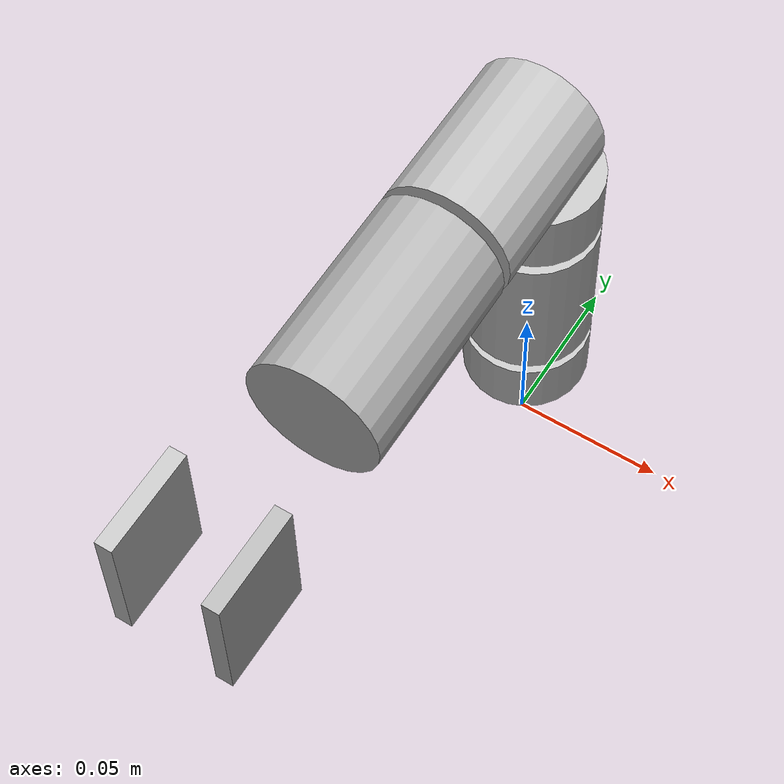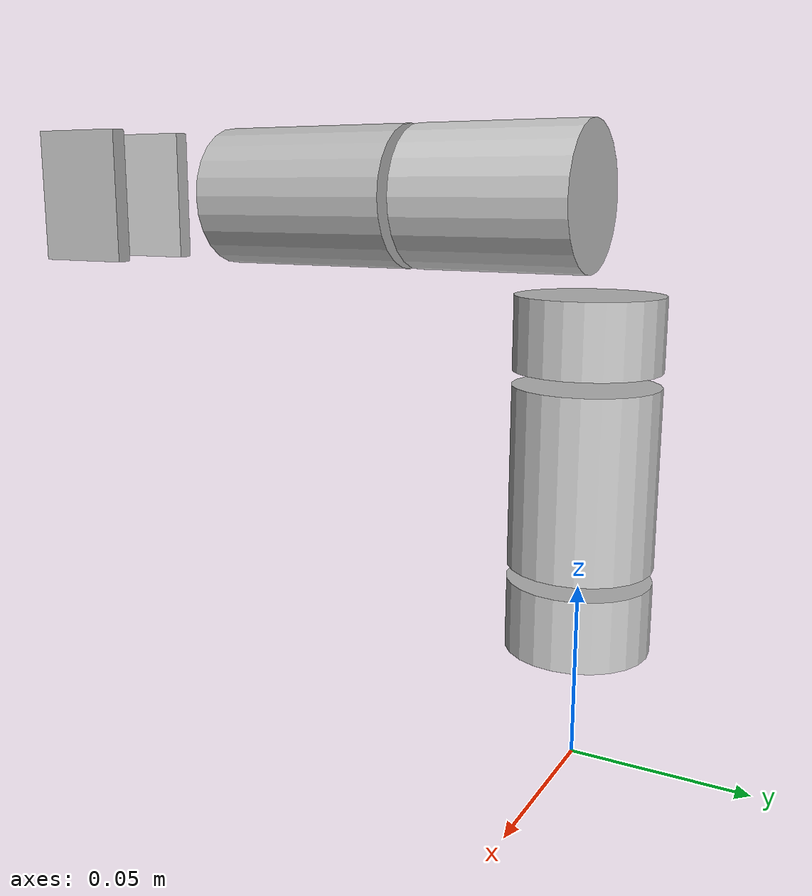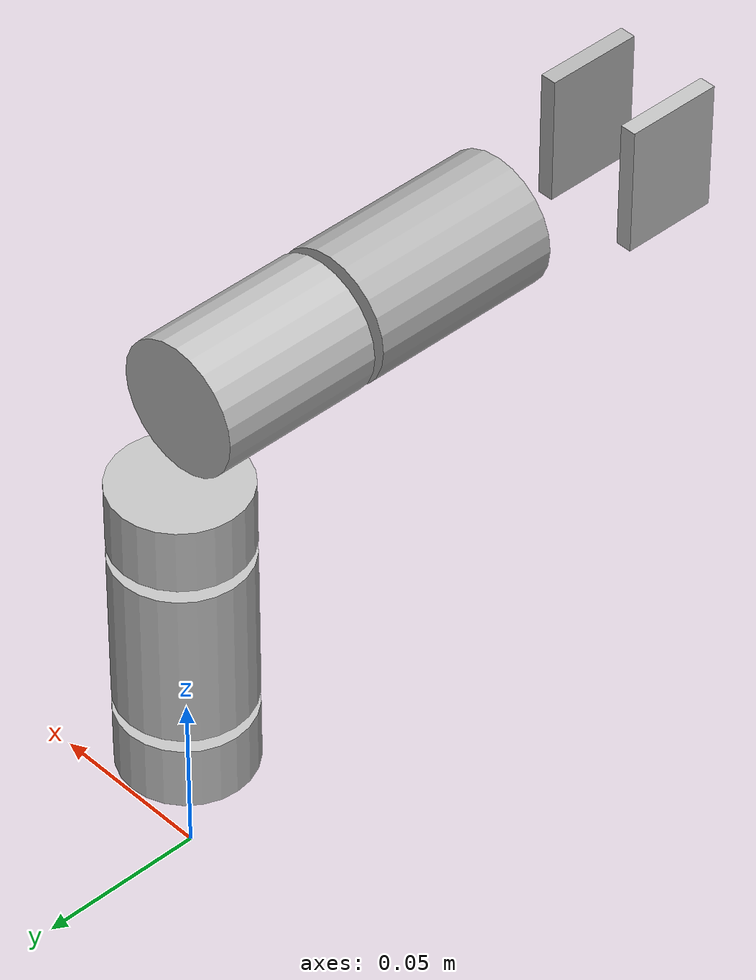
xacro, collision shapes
<?xml version="1.0" encoding="UTF-8"?>
<robot xmlns:xacro="http://www.ros.org/wiki/xacro" name="poppy_ergo_jr">
  <!-- Properties -->
  <xacro:property name="namespace" value="ergo_jr" />

  <xacro:arg name="lamp" default="false"/>
  <xacro:arg name="gripper" default="true"/>

  <xacro:arg name="fixed" default="true"/>
  <xacro:property name="is_fixed" value="true"/>

  <!-- Macro to add a camera. -->
  <xacro:macro name="camera_macro"
    params="namespace parent_link camera_suffix frame_rate
      horizontal_fov image_width image_height image_format min_distance
      max_distance noise_mean noise_stddev enable_visual *cylinder *origin">
    <link name="${namespace}/camera_${camera_suffix}_link">

      <xacro:if value="${enable_visual}">

        <visual>
          <origin xyz="0 0 0" rpy="0 1.57079632679 0" />
          <geometry>
            <xacro:insert_block name="cylinder" />
          </geometry>
          <material name="red">
		     <color rgba="1 0 0 1"/>
	  </material>
        </visual>
      </xacro:if>

      <inertial>
        <mass value="1e-5" />
        <origin xyz="0 0 0" rpy="0 0 0" />
        <inertia ixx="1e-6" ixy="0" ixz="0" iyy="1e-6" iyz="0" izz="1e-6" />
      </inertial>
    </link>

    <joint name="${namespace}/camera_${camera_suffix}_joint" type="fixed">
      <xacro:insert_block name="origin" />
      <parent link="${parent_link}" />
      <child link="${namespace}/camera_${camera_suffix}_link" />
    </joint>

    <gazebo reference="${namespace}/camera_${camera_suffix}_link">
      <sensor type="camera" name="${namespace}_camera_${camera_suffix}">
        <update_rate>${frame_rate}</update_rate>
        <camera name="head">
          <horizontal_fov>${horizontal_fov}</horizontal_fov>
          <image>
            <width>${image_width}</width>
            <height>${image_height}</height>
            <format>${image_format}</format>
          </image>
          <clip>
            <near>${min_distance}</near>
            <far>${max_distance}</far>
          </clip>
          <noise>
            <type>gaussian</type>
            <!-- Noise is sampled independently per pixel on each frame.
                 That pixel's noise value is added to each of its color
                 channels, which at that point lie in the range [0,1]. -->
            <mean>${noise_mean}</mean>
            <stddev>${noise_stddev}</stddev>
          </noise>
        </camera>
        <plugin name="${namespace}_camera_${camera_suffix}_controller" filename="libgazebo_ros_camera.so">
          <robotNamespace>${namespace}</robotNamespace>
          <alwaysOn>true</alwaysOn>
          <updateRate>${frame_rate}</updateRate>
          <cameraName>camera_${camera_suffix}</cameraName>
          <imageTopicName>image_raw</imageTopicName>
          <cameraInfoTopicName>camera_info</cameraInfoTopicName>
          <frameName>camera_${camera_suffix}_link</frameName>
          <hackBaseline>0.0</hackBaseline>
	  <Cx>2.0500638605704751e+02</Cx>
	  <Cy>1.5106876398089261e+02</Cy>
	  <focalLength>632.193308</focalLength>
          <distortionK1>1.4043219721770492e-01</distortionK1>
          <distortionK2>-1.3210129724889583e-01</distortionK2>
          <distortionK3>-3.6452869939025279e-01</distortionK3>
          <distortionT1>-5.1782301614838704e-04</distortionT1>
          <distortionT2>-5.2090817919999092e-03</distortionT2>
        </plugin>
      </sensor>
    </gazebo>
  </xacro:macro>

<xacro:camera_macro
    namespace="${namespace}"
    parent_link="base_link"
    camera_suffix="ergo"
    frame_rate="30.0"
    horizontal_fov="1.12825740656329"
    image_width="800"
    image_height="600"
    image_format="R8G8B8"
    min_distance="0.02"
    max_distance="400"
    noise_mean="0.0"
    noise_stddev="0.001"
    enable_visual="False"
    >
    <cylinder length="0.01" radius="0.007" />
    <origin xyz="0.0 -0.025 0.02" rpy="0 -0.39269908169872414 -1.57079632679"/>

</xacro:camera_macro>

<xacro:if value="$(arg fixed)">
<link name="world"/>
  <joint name="fixed" type="fixed">
    <parent link="world"/>
    <child link="base_link"/>
  </joint>
</xacro:if>
 <link name="base_link">
    <visual>
      <origin xyz="0 0 0" rpy="0 0 0" />
      <geometry>
        <mesh filename="package://poppy_ergo_jr_description/meshes/base.dae" />
      </geometry>
    </visual>

    <xacro:if value="${is_fixed == 'false'}">
    <inertial>
      <mass value="0.5" />
      <inertia ixx="0.1" iyy="0.1" izz="0.1" ixy="0.0" ixz="0.0" iyz="0.0" />
    </inertial>
    </xacro:if>
  </link>

  <link name="long_U">
    <visual>
      <origin xyz="0 0 0" rpy="0 0 0" />
      <geometry>
        <mesh filename="package://poppy_ergo_jr_description/meshes/long_U.dae" />
      </geometry>
      <material name="">
        <color rgba="0.752941176470588 0.752941176470588 0.752941176470588 1" />
      </material>
    </visual>
    <collision>
      <origin xyz="0 0 0.01" rpy="0 0 0" />
      <geometry>
        <cylinder length="0.02" radius="0.02" />
      </geometry>

    </collision>
    <inertial>
      <mass value="0.01" />
      <inertia ixx="0.03" iyy="0.03" izz="0.03" ixy="0.0" ixz="0.0" iyz="0.0" />
    </inertial>
  </link>
  <joint name="m1" type="revolute">
    <origin xyz="0 0 0.0327993216120967" rpy="0 0 0" />
    <parent link="base_link" />
    <child link="long_U" />
    <axis xyz="0 0 1" />
    <limit lower="-2.6179938779914944" upper="2.6179938779914944" effort="1" velocity="0.5"/>

    <physics>
      <ode>
        <limit>
          <cfm>0.0</cfm>
          <erp>0.2</erp>
        </limit>
	<suspension>
          <cfm>0.0</cfm>
          <erp>0.2</erp>
	</suspension>

      </ode>
    </physics>

  </joint>
  <link name="section_1">
    <visual>
      <origin xyz="0 0 0" rpy="0 1.5707963267949 0" />
      <geometry>
        <mesh filename="package://poppy_ergo_jr_description/meshes/section_1.dae" />
      </geometry>
      <material name="">
        <color rgba="0.752941176470588 0.752941176470588 0.752941176470588 1" />
      </material>
    </visual>
    <collision>
      <origin xyz="0.025 0 0" rpy="0 1.5707963267949 0" />
      <geometry>
        <cylinder length="0.05" radius="0.02" />
      </geometry>

    </collision>
    <inertial>
      <mass value="0.01" />
      <inertia ixx="0.03" iyy="0.03" izz="0.03" ixy="0.0" ixz="0.0" iyz="0.0" />
    </inertial>
  </link>
  <joint name="m2" type="revolute">
    <origin xyz="0 0 0.0240006783879033" rpy="0 -1.5707963267949 0" />
    <parent link="long_U" />
    <child link="section_1" />
    <axis xyz="0 0 -1" />
    <dynamics damping="0.7"/>
    <limit lower="-1.5707963267948966" upper="2.181661564992912" effort="1" velocity="1"/>

  </joint>
  <link name="section_2">
    <visual>
      <origin xyz="0 0 0" rpy="0 1.5707963267949 0" />
      <geometry>
        <mesh filename="package://poppy_ergo_jr_description/meshes/section_2.dae" />
      </geometry>
      <material name="">
        <color rgba="0.752941176470588 0.752941176470588 0.752941176470588 1" />
      </material>
    </visual>
    <collision>
      <origin xyz="0.01 0 0" rpy="0 1.5707963267949 0" />
      <geometry>
        <cylinder length="0.02" radius="0.02" />
      </geometry>

    </collision>
    <inertial>
      <mass value="0.01" />
      <inertia ixx="0.03" iyy="0.03" izz="0.03" ixy="0.0" ixz="0.0" iyz="0.0" />
    </inertial>
  </link>
  <joint name="m3" type="revolute">
    <origin xyz="0.054 0 0" rpy="0 0 0" />
    <parent link="section_1" />
    <child link="section_2" />
    <axis xyz="0 0 -1" />
    <dynamics damping="0.7"/>
    <limit lower="-1.5707963267948966" upper="1.5707963267948966" effort="1" velocity="1"/>

  </joint>
  <link name="section_3">
    <visual>
      <origin xyz="0 0 0" rpy="0 3.14159268 0" />
      <geometry>
        <mesh filename="package://poppy_ergo_jr_description/meshes/section_3.dae" />
      </geometry>
      <material name="">
        <color rgba="0.752941176470588 0.752941176470588 0.752941176470588 1" />
      </material>
    </visual>
    <collision>
      <origin xyz="0 -0.025 0" rpy="1.5707963267949 0 0" />
      <geometry>
        <cylinder length="0.05" radius="0.02" />
      </geometry>

    </collision>
    <inertial>
      <mass value="0.01" />
      <inertia ixx="0.03" iyy="0.03" izz="0.03" ixy="0.0" ixz="0.0" iyz="0.0" />
    </inertial>
  </link>
  <joint name="m4" type="revolute">
    <origin xyz="0.045 0 0" rpy="0 -1.5707963267949 0" />
    <parent link="section_2" />
    <child link="section_3" />
    <axis xyz="0 0 -1" />
    <dynamics damping="0.7"/>
    <limit lower="-2.6179938779914944" upper="2.6179938779914944" effort="1" velocity="1"/>

  </joint>

  <link name="section_4">
    <visual>
      <xacro:if value="$(arg lamp)">
        <origin xyz="0 0 0" rpy="0 -1.5707963267949 1.5707963267949" />
        <geometry>
          <mesh filename="package://poppy_ergo_jr_description/meshes/section_1.dae" />
        </geometry>
      </xacro:if>
      <xacro:if value="$(arg gripper)">
        <origin xyz="0 -0.058 0" rpy="0 -1.5707963267949 0" />
        <geometry>
          <mesh filename="package://poppy_ergo_jr_description/meshes/section_4.dae" />
        </geometry>
      </xacro:if>
    </visual>

    <xacro:if value="$(arg lamp)">
    <collision>
      <origin xyz="0 -0.035 0" rpy="1.5707963267949 0 0" />
      <geometry>
        <cylinder length="0.06" radius="0.02" />
        <box size="0.05 0.02 0.03" />
      </geometry>

    </collision>
  </xacro:if>

      <xacro:if value="$(arg gripper)">
    <collision>
      <origin xyz="0 -0.035 0" rpy="1.5707963267949 0 0" />
      <geometry>
        <cylinder length="0.06" radius="0.02" />
      </geometry>
    </collision>
    <collision>
      <origin xyz="0.0 -0.113 0.015" rpy="0 0 0" />
      <geometry>
          <box size="0.04 0.03 0.005" />
      </geometry>

      <surface>
            <contact>
      	       <collide_bitmask>0x01</collide_bitmask>
            </contact>
      </surface>
    </collision>
      </xacro:if>

    <inertial>
      <mass value="0.01" />
      <inertia ixx="0.03" iyy="0.03" izz="0.03" ixy="0.0" ixz="0.0" iyz="0.0" />
    </inertial>
  </link>
  <joint name="m5" type="revolute">
    <origin xyz="0 -0.048 0" rpy="0 -1.5707963267949 0" />
    <parent link="section_3" />
    <child link="section_4" />
    <axis xyz="0 0 1" />
    <dynamics damping="0.7"/>
    <limit lower="-1.5707963267948966" upper="1.5707963267948966" effort="1" velocity="1"/>

  </joint>

  <link name="fixed_tip" />
  <joint name="t7f" type="fixed">
    <xacro:if value="$(arg lamp)">
      <origin xyz="0 -0.075 0" rpy="-1.5707963267949 0 0" />
      <parent link="section_5" />
    </xacro:if>
    <xacro:if value="$(arg gripper)">
      <origin xyz="0 -0.11 0" rpy="0.0 -1.5707963267949 0" />

      <parent link="section_4" />
    </xacro:if>
    <child link="fixed_tip" />
  </joint>

  <link name="section_5">
    <xacro:if value="$(arg lamp)">
      <visual>
        <origin xyz="0 0 0" rpy="0 0 1.5707963267949" />
        <geometry>
          <mesh filename="package://poppy_ergo_jr_description/meshes/lamp.dae" />
        </geometry>
        <material name="">
          <color rgba="0.752941176470588 0.752941176470588 0.752941176470588 1" />
        </material>
      </visual>

    </xacro:if>

    <xacro:if value="$(arg gripper)">
      <visual>
        <origin xyz="0 0 0" rpy="0 0 0" />
        <geometry>
          <mesh filename="package://poppy_ergo_jr_description/meshes/gripper.dae" />
        </geometry>
        <material name="">
          <color rgba="0.752941176470588 0.752941176470588 0.752941176470588 1" />
        </material>
      </visual>

      <collision>
        <origin xyz="-0.015 -0.055 0" rpy="-1.5707963267949 0 0" />
        <geometry>
          <box size="0.005 0.04 0.03" />
        </geometry>

      <surface>
            <contact>
      	       <collide_bitmask>0x01</collide_bitmask>

            </contact>
      </surface>

      </collision>

    </xacro:if>
    <inertial>
      <mass value="0.01" />
      <inertia ixx="0.03" iyy="0.03" izz="0.03" ixy="0.0" ixz="0.0" iyz="0.0" />
    </inertial>
  </link>

  <xacro:if value="$(arg gripper)">
    <link name="dummy_gripper_tip">

      <visual>

        <origin xyz="-0.015 -0.055 0" rpy="-1.5707963267949 0 0" />
        <geometry>
          <box size="0.001 0.001 0.001" />
        </geometry>

      </visual>

      <inertial>
      <mass value="0.001" />
      <inertia ixx="0.03" iyy="0.03" izz="0.03" ixy="0.0" ixz="0.0" iyz="0.0" />
    </inertial>

      <collision>
        <origin xyz="-0.015 -0.055 0" rpy="-1.5707963267949 0 0" />
        <geometry>
          <box size="0.005 0.04 0.03" />
        </geometry>

      <surface>
            <contact>
      	       <collide_bitmask>0x01</collide_bitmask>

            </contact>
      </surface>

      </collision>

    </link>

  <joint name="dummy_fixed" type="prismatic">

      <parent link="section_5" />
      <child link="dummy_gripper_tip" />

       <axis xyz="0 0 1"/>
       <limit lower="0" upper="0" effort="1000" velocity="0.0"/>
  </joint>

  </xacro:if>

  <joint name="m6" type="revolute">
    <xacro:if value="$(arg lamp)">
      <origin xyz="0 -0.054 0" rpy="0 0 0" />
      <axis xyz="0 0 1" />
    </xacro:if>
    <xacro:if value="$(arg gripper)">
      <origin xyz="0 -0.058 0" rpy="0 -1.5707963267949 0" />
      <axis xyz="0 0 -1" />
    </xacro:if>
    <parent link="section_4" />
    <child link="section_5" />
    <dynamics damping="0.7"/>
    <limit lower="-1.9198621771937625" upper="1.5707963267948966" effort="1" velocity="1"/>

  </joint>
  <xacro:if value="$(arg gripper)">
    <link name="moving_tip" />
    <joint name="t7m" type="fixed">
      <origin xyz="0 -0.052 0" rpy="-1.5707963267949 0 0" />
      <parent link="section_5" />
      <child link="moving_tip" />
    </joint>
  </xacro:if>
  <transmission name="trans_m1">
    <type>transmission_interface/SimpleTransmission</type>
    <joint name="m1">
      <hardwareInterface>hardware_interface/EffortJointInterface</hardwareInterface>
    </joint>
    <actuator name="m1_motor">
      <hardwareInterface>hardware_interface/EffortJointInterface</hardwareInterface>
      <mechanicalReduction>1</mechanicalReduction>
    </actuator>
  </transmission>
  <transmission name="trans_m2">
    <type>transmission_interface/SimpleTransmission</type>
    <joint name="m2">
      <hardwareInterface>hardware_interface/EffortJointInterface</hardwareInterface>
    </joint>
    <actuator name="m2_motor">
      <hardwareInterface>hardware_interface/EffortJointInterface</hardwareInterface>
      <mechanicalReduction>1</mechanicalReduction>
    </actuator>
  </transmission>
  <transmission name="trans_m3">
    <type>transmission_interface/SimpleTransmission</type>
    <joint name="m3">
      <hardwareInterface>hardware_interface/EffortJointInterface</hardwareInterface>
    </joint>
    <actuator name="m3_motor">
      <hardwareInterface>hardware_interface/EffortJointInterface</hardwareInterface>
      <mechanicalReduction>1</mechanicalReduction>
    </actuator>
  </transmission>
  <transmission name="trans_m4">
    <type>transmission_interface/SimpleTransmission</type>
    <joint name="m4">
      <hardwareInterface>hardware_interface/EffortJointInterface</hardwareInterface>
    </joint>
    <actuator name="m4_motor">
      <hardwareInterface>hardware_interface/EffortJointInterface</hardwareInterface>
      <mechanicalReduction>1</mechanicalReduction>
    </actuator>
  </transmission>
  <transmission name="trans_m5">
    <type>transmission_interface/SimpleTransmission</type>
    <joint name="m5">
      <hardwareInterface>hardware_interface/EffortJointInterface</hardwareInterface>
    </joint>
    <actuator name="m5_motor">
      <hardwareInterface>hardware_interface/EffortJointInterface</hardwareInterface>
      <mechanicalReduction>1</mechanicalReduction>
    </actuator>
  </transmission>
  <transmission name="trans_m6">
    <type>transmission_interface/SimpleTransmission</type>
    <joint name="m6">
      <hardwareInterface>hardware_interface/EffortJointInterface</hardwareInterface>
    </joint>
    <actuator name="m6_motor">
      <hardwareInterface>hardware_interface/EffortJointInterface</hardwareInterface>
      <mechanicalReduction>1</mechanicalReduction>
    </actuator>
  </transmission>
  <gazebo>
    <plugin name="gazebo_ros_control" filename="libgazebo_ros_control.so">
      <robotNamespace>/ergo_jr</robotNamespace>
    </plugin>

  </gazebo>

  <gazebo reference="section_4">
    <selfCollide>true</selfCollide>
    <collision>
    <surface>
      <contact>
        <ode>
	  <min_depth>0.003</min_depth>
	  <max_vel>0</max_vel>
        </ode>
      </contact>

      <friction>
        <ode>
	  <mu>100000.0</mu>
	  <mu2>100000.0</mu2>
          <fdir1>1 1 1</fdir1>
        </ode>
      </friction>
    </surface>
    </collision>
  </gazebo>

  <gazebo reference="dummy_gripper_tip">
    <selfCollide>true</selfCollide>
    <collision>

    <surface>
      <contact>
        <ode>
	  <min_depth>0.003</min_depth>
	  <max_vel>0</max_vel>
        </ode>
      </contact>

      <friction>
        <ode>
	  <mu>100000.0</mu>
	  <mu2>100000.0</mu2>
          <fdir1>1 1 1</fdir1>
        </ode>
      </friction>
    </surface>
    </collision>

  </gazebo>

</robot>
